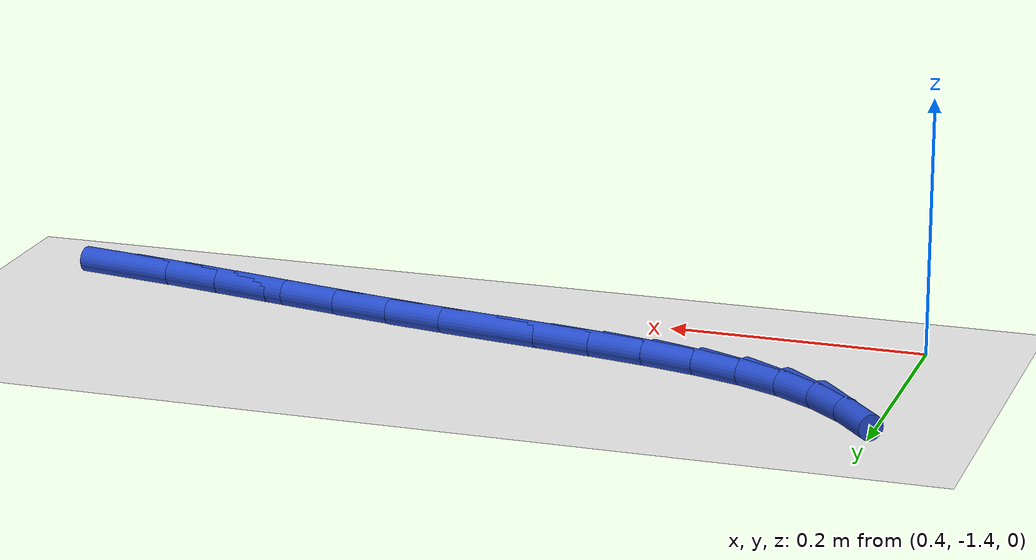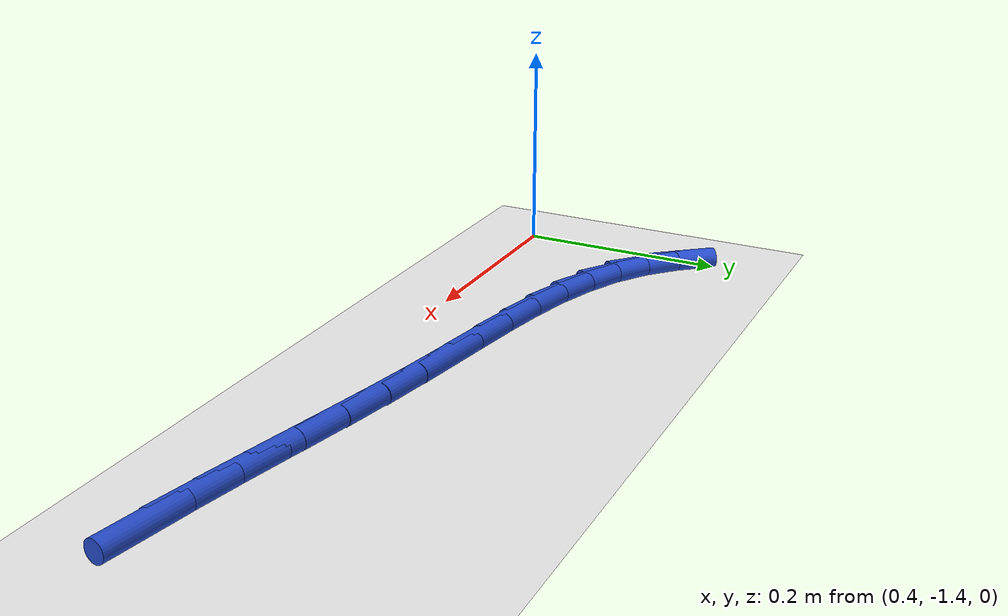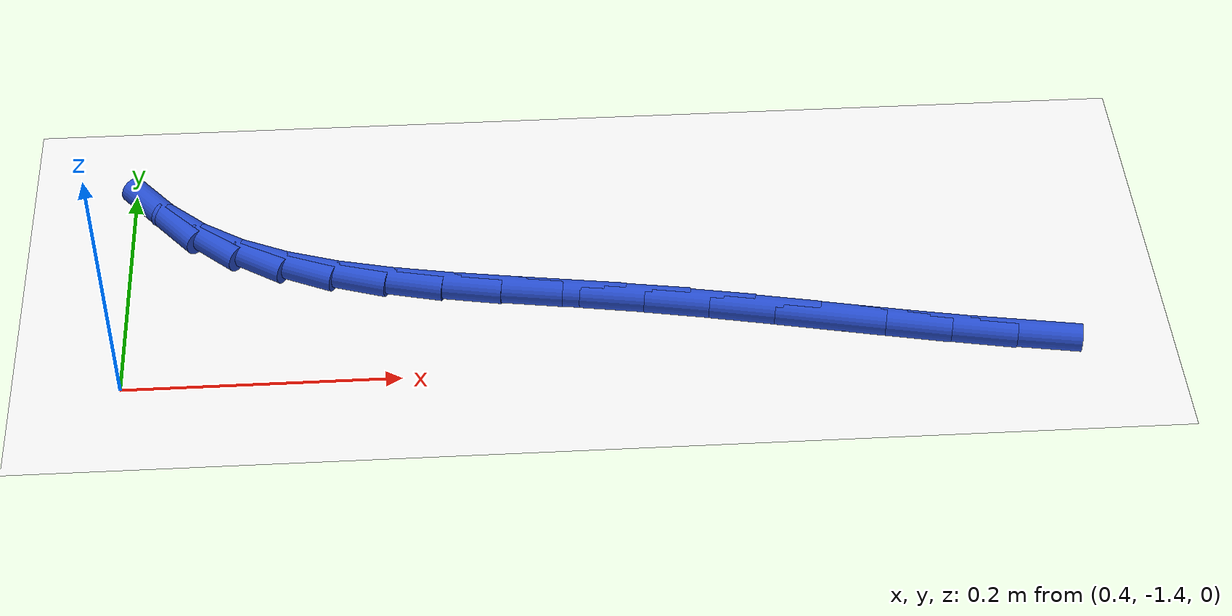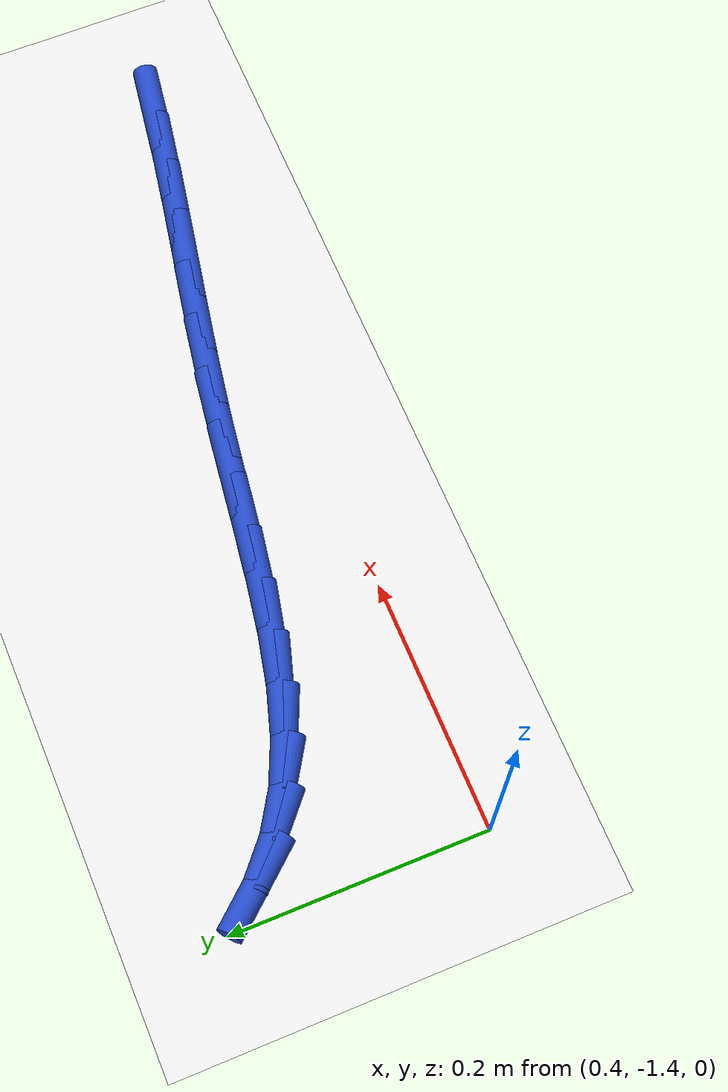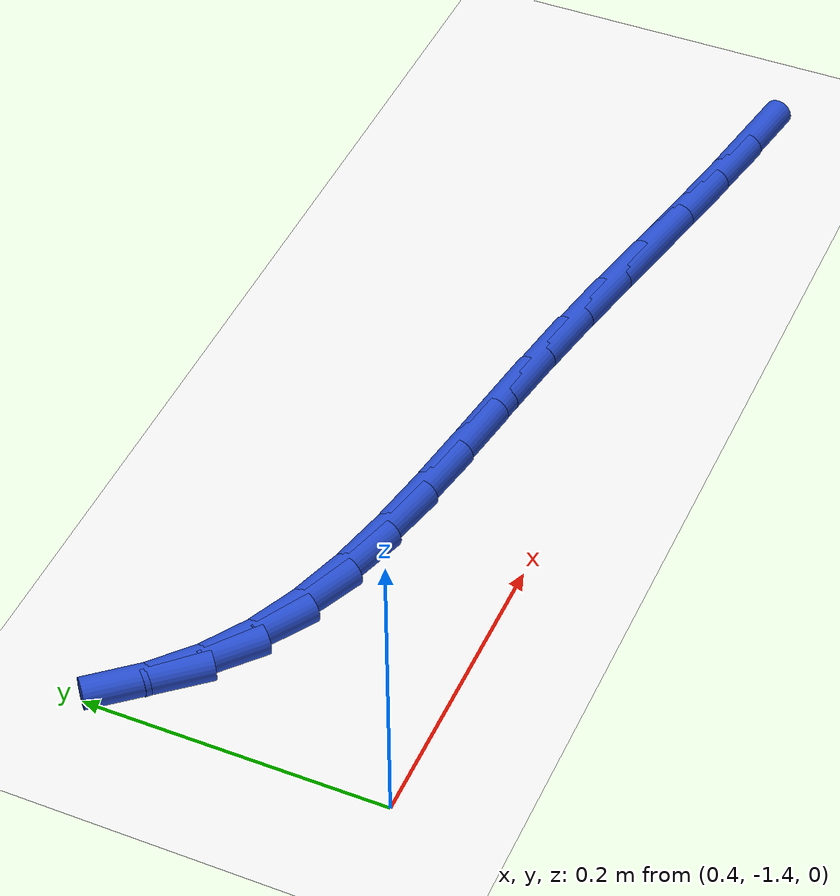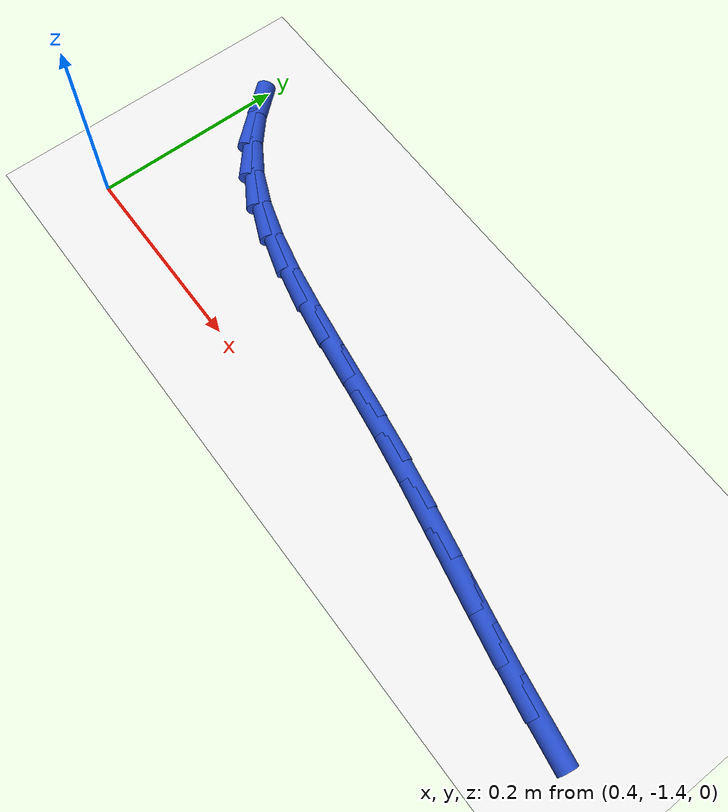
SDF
<sdf version="1.6">
 <world name="default">
  <model name="ground_plane">
   <static>1</static>
   <link name="link">
    <collision name="collision">
     <geometry><plane><normal>0 0 1</normal><size>100 100</size></plane></geometry>
     <surface><friction><ode><mu>100</mu><mu2>50</mu2></ode></friction></surface>
    </collision>
    <visual name="visual">
     <cast_shadows>0</cast_shadows>
     <geometry><plane><normal>0 0 1</normal><size>100 100</size></plane></geometry>
     <material>
      <script><uri>file://media/materials/scripts/gazebo.material</uri><name>Gazebo/WhiteGlow</name></script>
     </material>
    </visual>
   </link>
  </model>
  <model name="line">
   <link name="link_144">
    <pose>1.0479363328126543 -1.3910956964154184 0.01 0 1.57 -0.16342967653530216</pose>
    <collision name="collision">
     <geometry><cylinder><radius>0.01</radius><length>0.08</length></cylinder></geometry>
    </collision>
    <visual name="visual">
     <material>
      <script><name>Gazebo/Blue</name><uri>file://media/materials/scripts/gazebo.material</uri></script>
     </material>
     <geometry><cylinder><radius>0.01</radius><length>0.08</length></cylinder></geometry>
    </visual>
   </link>
   <link name="link_145">
    <pose>1.0026130421837383 -1.3836218667525215 0.01 0 1.57 -0.18581305278296995</pose>
    <collision name="collision">
     <geometry><cylinder><radius>0.01</radius><length>0.08</length></cylinder></geometry>
    </collision>
    <visual name="visual">
     <material>
      <script><name>Gazebo/Blue</name><uri>file://media/materials/scripts/gazebo.material</uri></script>
     </material>
     <geometry><cylinder><radius>0.01</radius><length>0.08</length></cylinder></geometry>
    </visual>
   </link>
   <link name="link_146">
    <pose>0.9566347355160679 -1.3749787958778352 0.01 0 1.57 -0.1979953600971984</pose>
    <collision name="collision">
     <geometry><cylinder><radius>0.01</radius><length>0.08</length></cylinder></geometry>
    </collision>
    <visual name="visual">
     <material>
      <script><name>Gazebo/Blue</name><uri>file://media/materials/scripts/gazebo.material</uri></script>
     </material>
     <geometry><cylinder><radius>0.01</radius><length>0.08</length></cylinder></geometry>
    </visual>
   </link>
   <link name="link_147">
    <pose>0.9102051710183391 -1.365663917097228 0.01 0 1.57 -0.2005626275252995</pose>
    <collision name="collision">
     <geometry><cylinder><radius>0.01</radius><length>0.08</length></cylinder></geometry>
    </collision>
    <visual name="visual">
     <material>
      <script><name>Gazebo/Blue</name><uri>file://media/materials/scripts/gazebo.material</uri></script>
     </material>
     <geometry><cylinder><radius>0.01</radius><length>0.08</length></cylinder></geometry>
    </visual>
   </link>
   <link name="link_148">
    <pose>0.8635281068992473 -1.3561746637165686 0.01 0 1.57 -0.19373024964759522</pose>
    <collision name="collision">
     <geometry><cylinder><radius>0.01</radius><length>0.08</length></cylinder></geometry>
    </collision>
    <visual name="visual">
     <material>
      <script><name>Gazebo/Blue</name><uri>file://media/materials/scripts/gazebo.material</uri></script>
     </material>
     <geometry><cylinder><radius>0.01</radius><length>0.08</length></cylinder></geometry>
    </visual>
   </link>
   <link name="link_149">
    <pose>0.8168073013674877 -1.3470084690417268 0.01 0 1.57 -0.17735974862992038</pose>
    <collision name="collision">
     <geometry><cylinder><radius>0.01</radius><length>0.08</length></cylinder></geometry>
    </collision>
    <visual name="visual">
     <material>
      <script><name>Gazebo/Blue</name><uri>file://media/materials/scripts/gazebo.material</uri></script>
     </material>
     <geometry><cylinder><radius>0.01</radius><length>0.08</length></cylinder></geometry>
    </visual>
   </link>
   <link name="link_150">
    <pose>0.7702465126317559 -1.3386627663785713 0.01 0 1.57 -0.15420774601696505</pose>
    <collision name="collision">
     <geometry><cylinder><radius>0.01</radius><length>0.08</length></cylinder></geometry>
    </collision>
    <visual name="visual">
     <material>
      <script><name>Gazebo/Blue</name><uri>file://media/materials/scripts/gazebo.material</uri></script>
     </material>
     <geometry><cylinder><radius>0.01</radius><length>0.08</length></cylinder></geometry>
    </visual>
   </link>
   <link name="link_151">
    <pose>0.7240809609597675 -1.3314867080377304 0.01 0 1.57 -0.14247169874439933</pose>
    <collision name="collision">
     <geometry><cylinder><radius>0.01</radius><length>0.08</length></cylinder></geometry>
    </collision>
    <visual name="visual">
     <material>
      <script><name>Gazebo/Blue</name><uri>file://media/materials/scripts/gazebo.material</uri></script>
     </material>
     <geometry><cylinder><radius>0.01</radius><length>0.08</length></cylinder></geometry>
    </visual>
   </link>
   <link name="link_152">
    <pose>0.6787259269159543 -1.324980820371111 0.01 0 1.57 -0.14948427313434934</pose>
    <collision name="collision">
     <geometry><cylinder><radius>0.01</radius><length>0.08</length></cylinder></geometry>
    </collision>
    <visual name="visual">
     <material>
      <script><name>Gazebo/Blue</name><uri>file://media/materials/scripts/gazebo.material</uri></script>
     </material>
     <geometry><cylinder><radius>0.01</radius><length>0.08</length></cylinder></geometry>
    </visual>
   </link>
   <link name="link_153">
    <pose>0.6346606381913611 -1.3183442462906139 0.01 0 1.57 -0.17706574433628716</pose>
    <collision name="collision">
     <geometry><cylinder><radius>0.01</radius><length>0.08</length></cylinder></geometry>
    </collision>
    <visual name="visual">
     <material>
      <script><name>Gazebo/Blue</name><uri>file://media/materials/scripts/gazebo.material</uri></script>
     </material>
     <geometry><cylinder><radius>0.01</radius><length>0.08</length></cylinder></geometry>
    </visual>
   </link>
   <link name="link_154">
    <pose>0.5923643987937806 -1.310775769026564 0.01 0 1.57 -0.2282155598594083</pose>
    <collision name="collision">
     <geometry><cylinder><radius>0.01</radius><length>0.08</length></cylinder></geometry>
    </collision>
    <visual name="visual">
     <material>
      <script><name>Gazebo/Blue</name><uri>file://media/materials/scripts/gazebo.material</uri></script>
     </material>
     <geometry><cylinder><radius>0.01</radius><length>0.08</length></cylinder></geometry>
    </visual>
   </link>
   <link name="link_155">
    <pose>0.5523165127310049 -1.3014741718092855 0.01 0 1.57 -0.3071112417652498</pose>
    <collision name="collision">
     <geometry><cylinder><radius>0.01</radius><length>0.08</length></cylinder></geometry>
    </collision>
    <visual name="visual">
     <material>
      <script><name>Gazebo/Blue</name><uri>file://media/materials/scripts/gazebo.material</uri></script>
     </material>
     <geometry><cylinder><radius>0.01</radius><length>0.08</length></cylinder></geometry>
    </visual>
   </link>
   <link name="link_156">
    <pose>0.5149962840108265 -1.2896382378691036 0.01 0 1.57 -0.4184699539966998</pose>
    <collision name="collision">
     <geometry><cylinder><radius>0.01</radius><length>0.08</length></cylinder></geometry>
    </collision>
    <visual name="visual">
     <material>
      <script><name>Gazebo/Blue</name><uri>file://media/materials/scripts/gazebo.material</uri></script>
     </material>
     <geometry><cylinder><radius>0.01</radius><length>0.08</length></cylinder></geometry>
    </visual>
   </link>
   <link name="link_157">
    <pose>0.4808830166410374 -1.2744667504363418 0.01 0 1.57 -0.5645511302739767</pose>
    <collision name="collision">
     <geometry><cylinder><radius>0.01</radius><length>0.08</length></cylinder></geometry>
    </collision>
    <visual name="visual">
     <material>
      <script><name>Gazebo/Blue</name><uri>file://media/materials/scripts/gazebo.material</uri></script>
     </material>
     <geometry><cylinder><radius>0.01</radius><length>0.08</length></cylinder></geometry>
    </visual>
   </link>
   <link name="link_158">
    <pose>0.45043697595856746 -1.2551850370801874 0.01 0 1.57 -0.7229459839256137</pose>
    <collision name="collision">
     <geometry><cylinder><radius>0.01</radius><length>0.08</length></cylinder></geometry>
    </collision>
    <visual name="visual">
     <material>
      <script><name>Gazebo/Blue</name><uri>file://media/materials/scripts/gazebo.material</uri></script>
     </material>
     <geometry><cylinder><radius>0.01</radius><length>0.08</length></cylinder></geometry>
    </visual>
   </link>
   <link name="link_159">
    <pose>0.42370291494504836 -1.2315977463129784 0.01 0 1.57 -0.8666416024527122</pose>
    <collision name="collision">
     <geometry><cylinder><radius>0.01</radius><length>0.08</length></cylinder></geometry>
    </collision>
    <visual name="visual">
     <material>
      <script><name>Gazebo/Blue</name><uri>file://media/materials/scripts/gazebo.material</uri></script>
     </material>
     <geometry><cylinder><radius>0.01</radius><length>0.08</length></cylinder></geometry>
    </visual>
   </link>
  </model>
 </world>
</sdf>
